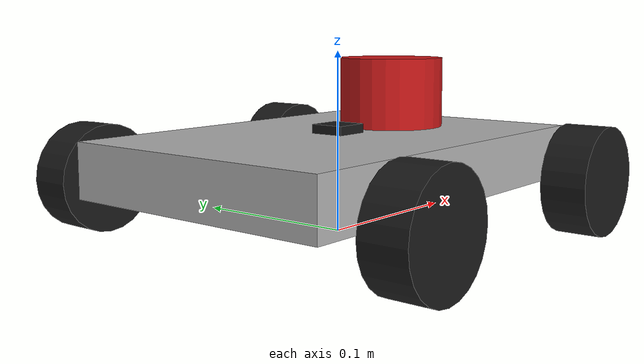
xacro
<?xml version="1.0"?>
<robot xmlns:xacro="http://www.ros.org/wiki/xacro" name="roboco">

  <material name="silver"> <color rgba="0.7 0.7 0.7 1"/> </material>
  <material name="black"> <color rgba="0.1 0.1 0.1 1"/> </material>
  <material name="red"> <color rgba="0.8 0.1 0.1 1"/> </material>

  <link name="base_footprint"/>

  <joint name="base_joint" type="fixed">
    <parent link="base_footprint"/>
    <child link="base_link"/>
    <origin xyz="0 0 0.04" rpy="0 0 0"/>
  </joint>

  <link name="base_link">
    <visual>
      <geometry> <box size="0.225 0.16 0.03"/> </geometry>
      <material name="silver"/>
    </visual>
    <collision>
      <geometry> <box size="0.225 0.16 0.03"/> </geometry>
    </collision>
    <inertial>
      <mass value="3.0"/>
      <inertia ixx="0.006" ixy="0" ixz="0" iyy="0.012" iyz="0" izz="0.018"/>
    </inertial>
  </link>

  <xacro:macro name="omni_wheel" params="prefix x_reflect y_reflect">
    <link name="${prefix}_wheel">
      <visual>
        <geometry> <cylinder radius="0.03" length="0.025"/> </geometry>
        <material name="black"/>
      </visual>
      <collision>
        <geometry> <cylinder radius="0.03" length="0.025"/> </geometry>
      </collision>
      <inertial>
        <mass value="0.2"/>
        <inertia ixx="0.00005" ixy="0" ixz="0" iyy="0.00005" iyz="0" izz="0.00009"/>
      </inertial>
    </link>

    <joint name="${prefix}_wheel_joint" type="continuous">
      <parent link="base_link"/>
      <child link="${prefix}_wheel"/>
      <origin xyz="${x_reflect * 0.08} ${y_reflect * 0.11} -0.01" rpy="-1.5708 0 0"/>
      <axis xyz="0 0 1"/>
    </joint>
  </xacro:macro>

  <xacro:omni_wheel prefix="front_left" x_reflect="1" y_reflect="1" />
  <xacro:omni_wheel prefix="front_right" x_reflect="1" y_reflect="-1" />
  <xacro:omni_wheel prefix="rear_left" x_reflect="-1" y_reflect="1" />
  <xacro:omni_wheel prefix="rear_right" x_reflect="-1" y_reflect="-1" />

  <link name="laser_frame">
    <visual>
      <geometry> <cylinder radius="0.03" length="0.04"/> </geometry>
      <material name="red"/>
    </visual>
    <collision>
      <geometry> <cylinder radius="0.03" length="0.04"/> </geometry>
    </collision>
    <inertial>
      <mass value="0.1"/>
      <inertia ixx="0.0001" ixy="0" ixz="0" iyy="0.0001" iyz="0" izz="0.0001"/>
    </inertial>
  </link>

  <joint name="laser_joint" type="fixed">
    <parent link="base_link"/>
    <child link="laser_frame"/>
    <origin xyz="0.05 0 0.035" rpy="0 0 0"/>
  </joint>

  <link name="imu_link">
    <visual>
      <geometry> <box size="0.02 0.02 0.01"/> </geometry>
      <material name="black"/>
    </visual>
    <inertial>
      <mass value="0.01"/>
      <inertia ixx="0.00001" ixy="0" ixz="0" iyy="0.00001" iyz="0" izz="0.00001"/>
    </inertial>
  </link>

  <joint name="imu_joint" type="fixed">
    <parent link="base_link"/>
    <child link="imu_link"/>
    <origin xyz="0 0 0.015" rpy="0 0 0"/>
  </joint>

  <gazebo>
    <plugin filename="gz-sim-mecanum-drive-system" name="gz::sim::systems::MecanumDrive">
      <front_left_joint>front_left_wheel_joint</front_left_joint>
      <front_right_joint>front_right_wheel_joint</front_right_joint>
      <back_left_joint>rear_left_wheel_joint</back_left_joint>
      <back_right_joint>rear_right_wheel_joint</back_right_joint>
      <wheel_separation>0.22</wheel_separation>
      <wheelbase>0.16</wheelbase>
      <wheel_radius>0.03</wheel_radius>
      <topic>/cmd_vel</topic>
      <odom_topic>/odom</odom_topic>
      <tf_topic>/tf</tf_topic>
      <frame_id>odom</frame_id>
      <child_frame_id>base_footprint</child_frame_id>
    </plugin>

    <plugin filename="gz-sim-joint-state-publisher-system" name="gz::sim::systems::JointStatePublisher">
      <topic>/joint_states</topic>
    </plugin>

    <plugin filename="gz-sim-sensors-system" name="gz::sim::systems::Sensors">
      <render_engine>ogre2</render_engine>
    </plugin>
  </gazebo>

  <gazebo reference="laser_frame">
    <sensor name="lidar" type="gpu_lidar">
      <pose>0 0 0 0 0 0</pose>
      <visualize>true</visualize>
      <always_on>true</always_on>
      <update_rate>10</update_rate>
      <lidar>
        <scan>
          <horizontal>
            <samples>360</samples>
            <resolution>1</resolution>
            <min_angle>-3.14159</min_angle>
            <max_angle>3.14159</max_angle>
          </horizontal>
        </scan>
        <range>
          <min>0.15</min>
          <max>12.0</max>
        </range>
      </lidar>
      <topic>/scan</topic>
      <gz_frame_id>laser_frame</gz_frame_id>
    </sensor>
  </gazebo>

  <gazebo reference="imu_link">
    <sensor name="imu_sensor" type="imu">
      <always_on>true</always_on>
      <update_rate>100</update_rate>
      <topic>/imu</topic>
      <gz_frame_id>imu_link</gz_frame_id>
    </sensor>
  </gazebo>

</robot>
